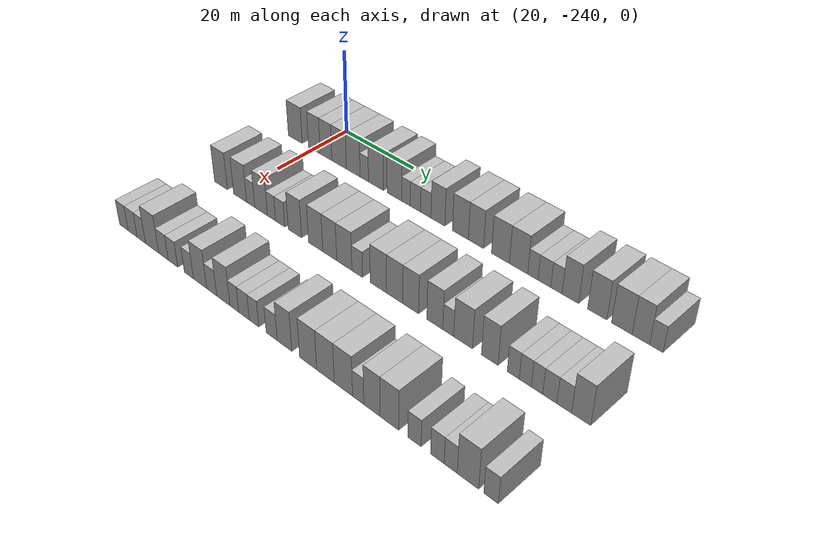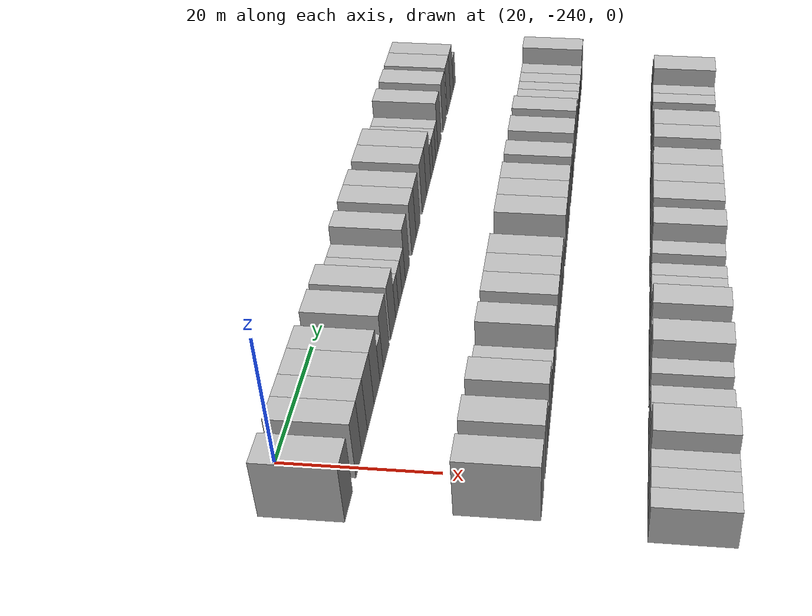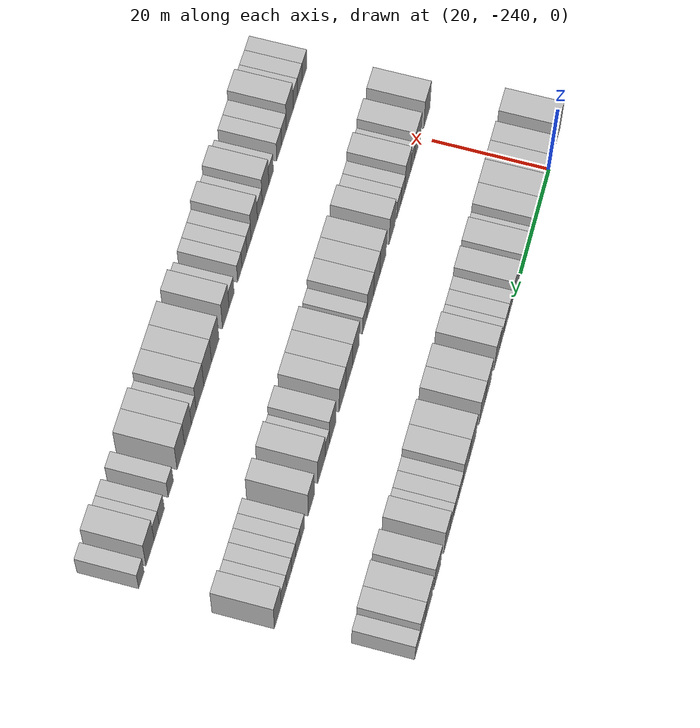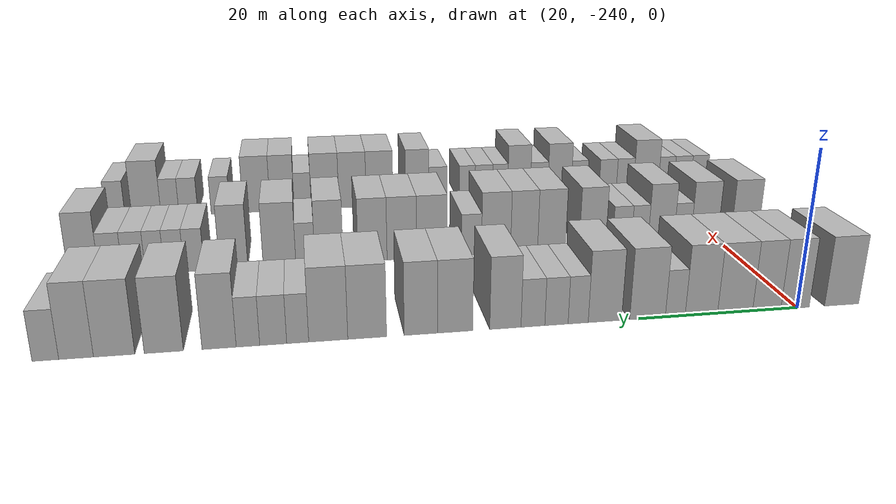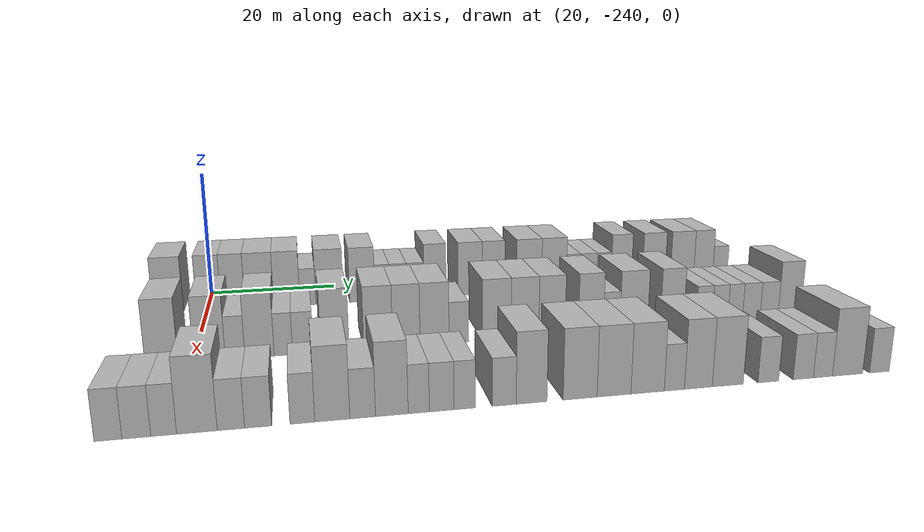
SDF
<sdf version="1.6">
 <world name="default">
  <model name="building_1">
   <static>1</static>
   <pose>25.0000 -245.7644 0 0.000000 0.000000 0.000000</pose>
   <link name="link">
    <pose>0 0 4.50 0 0 0</pose>
    <collision name="collision"><geometry><box><size>10.0000 4.4713 9.0000</size></box></geometry></collision>
    <visual name="visual">
     <cast_shadows>0</cast_shadows>
     <geometry><box><size>10.0000 4.4713 9.0000</size></box></geometry>
     <material>
      <script>
       <uri>model://HANNAS_wall/materials/scripts</uri>
       <uri>model://HANNAS_wall/materials/textures</uri>
       <name>vrc/HANNAS_wall</name>
      </script>
     </material>
    </visual>
   </link>
  </model>
  <model name="building_2">
   <static>1</static>
   <pose>25.0000 -239.6959 0 0.000000 0.000000 0.000000</pose>
   <link name="link">
    <pose>0 0 4.50 0 0 0</pose>
    <collision name="collision"><geometry><box><size>10.0000 3.6656 9.0000</size></box></geometry></collision>
    <visual name="visual">
     <cast_shadows>0</cast_shadows>
     <geometry><box><size>10.0000 3.6656 9.0000</size></box></geometry>
     <material>
      <script>
       <uri>model://HANNAS_wall/materials/scripts</uri>
       <uri>model://HANNAS_wall/materials/textures</uri>
       <name>vrc/HANNAS_wall</name>
      </script>
     </material>
    </visual>
   </link>
  </model>
  <model name="building_3">
   <static>1</static>
   <pose>25.0000 -236.0522 0 0.000000 0.000000 0.000000</pose>
   <link name="link">
    <pose>0 0 4.50 0 0 0</pose>
    <collision name="collision"><geometry><box><size>10.0000 3.6218 9.0000</size></box></geometry></collision>
    <visual name="visual">
     <cast_shadows>0</cast_shadows>
     <geometry><box><size>10.0000 3.6218 9.0000</size></box></geometry>
     <material>
      <script>
       <uri>model://HANNAS_wall/materials/scripts</uri>
       <uri>model://HANNAS_wall/materials/textures</uri>
       <name>vrc/HANNAS_wall</name>
      </script>
     </material>
    </visual>
   </link>
  </model>
  <model name="building_4">
   <static>1</static>
   <pose>25.0000 -232.0226 0 0.000000 0.000000 0.000000</pose>
   <link name="link">
    <pose>0 0 4.50 0 0 0</pose>
    <collision name="collision"><geometry><box><size>10.0000 4.4375 9.0000</size></box></geometry></collision>
    <visual name="visual">
     <cast_shadows>0</cast_shadows>
     <geometry><box><size>10.0000 4.4375 9.0000</size></box></geometry>
     <material>
      <script>
       <uri>model://HANNAS_wall/materials/scripts</uri>
       <uri>model://HANNAS_wall/materials/textures</uri>
       <name>vrc/HANNAS_wall</name>
      </script>
     </material>
    </visual>
   </link>
  </model>
  <model name="building_5">
   <static>1</static>
   <pose>25.0000 -227.7688 0 0.000000 0.000000 0.000000</pose>
   <link name="link">
    <pose>0 0 4.50 0 0 0</pose>
    <collision name="collision"><geometry><box><size>10.0000 4.0701 9.0000</size></box></geometry></collision>
    <visual name="visual">
     <cast_shadows>0</cast_shadows>
     <geometry><box><size>10.0000 4.0701 9.0000</size></box></geometry>
     <material>
      <script>
       <uri>model://HANNAS_wall/materials/scripts</uri>
       <uri>model://HANNAS_wall/materials/textures</uri>
       <name>vrc/HANNAS_wall</name>
      </script>
     </material>
    </visual>
   </link>
  </model>
  <model name="building_6">
   <static>1</static>
   <pose>25.0000 -224.5010 0 0.000000 0.000000 0.000000</pose>
   <link name="link">
    <pose>0 0 3.00 0 0 0</pose>
    <collision name="collision"><geometry><box><size>10.0000 2.4654 6.0000</size></box></geometry></collision>
    <visual name="visual">
     <cast_shadows>0</cast_shadows>
     <geometry><box><size>10.0000 2.4654 6.0000</size></box></geometry>
     <material>
      <script>
       <uri>model://HANNAS_wall/materials/scripts</uri>
       <uri>model://HANNAS_wall/materials/textures</uri>
       <name>vrc/HANNAS_wall</name>
      </script>
     </material>
    </visual>
   </link>
  </model>
  <model name="building_7">
   <static>1</static>
   <pose>25.0000 -221.0749 0 0.000000 0.000000 0.000000</pose>
   <link name="link">
    <pose>0 0 4.50 0 0 0</pose>
    <collision name="collision"><geometry><box><size>10.0000 4.3868 9.0000</size></box></geometry></collision>
    <visual name="visual">
     <cast_shadows>0</cast_shadows>
     <geometry><box><size>10.0000 4.3868 9.0000</size></box></geometry>
     <material>
      <script>
       <uri>model://HANNAS_wall/materials/scripts</uri>
       <uri>model://HANNAS_wall/materials/textures</uri>
       <name>vrc/HANNAS_wall</name>
      </script>
     </material>
    </visual>
   </link>
  </model>
  <model name="building_8">
   <static>1</static>
   <pose>25.0000 -215.8531 0 0.000000 0.000000 0.000000</pose>
   <link name="link">
    <pose>0 0 4.50 0 0 0</pose>
    <collision name="collision"><geometry><box><size>10.0000 4.0567 9.0000</size></box></geometry></collision>
    <visual name="visual">
     <cast_shadows>0</cast_shadows>
     <geometry><box><size>10.0000 4.0567 9.0000</size></box></geometry>
     <material>
      <script>
       <uri>model://HANNAS_wall/materials/scripts</uri>
       <uri>model://HANNAS_wall/materials/textures</uri>
       <name>vrc/HANNAS_wall</name>
      </script>
     </material>
    </visual>
   </link>
  </model>
  <model name="building_9">
   <static>1</static>
   <pose>25.0000 -212.6111 0 0.000000 0.000000 0.000000</pose>
   <link name="link">
    <pose>0 0 3.00 0 0 0</pose>
    <collision name="collision"><geometry><box><size>10.0000 2.4273 6.0000</size></box></geometry></collision>
    <visual name="visual">
     <cast_shadows>0</cast_shadows>
     <geometry><box><size>10.0000 2.4273 6.0000</size></box></geometry>
     <material>
      <script>
       <uri>model://HANNAS_wall/materials/scripts</uri>
       <uri>model://HANNAS_wall/materials/textures</uri>
       <name>vrc/HANNAS_wall</name>
      </script>
     </material>
    </visual>
   </link>
  </model>
  <model name="building_10">
   <static>1</static>
   <pose>25.0000 -210.0040 0 0.000000 0.000000 0.000000</pose>
   <link name="link">
    <pose>0 0 3.00 0 0 0</pose>
    <collision name="collision"><geometry><box><size>10.0000 2.7869 6.0000</size></box></geometry></collision>
    <visual name="visual">
     <cast_shadows>0</cast_shadows>
     <geometry><box><size>10.0000 2.7869 6.0000</size></box></geometry>
     <material>
      <script>
       <uri>model://HANNAS_wall/materials/scripts</uri>
       <uri>model://HANNAS_wall/materials/textures</uri>
       <name>vrc/HANNAS_wall</name>
      </script>
     </material>
    </visual>
   </link>
  </model>
  <model name="building_11">
   <static>1</static>
   <pose>25.0000 -207.1946 0 0.000000 0.000000 0.000000</pose>
   <link name="link">
    <pose>0 0 3.00 0 0 0</pose>
    <collision name="collision"><geometry><box><size>10.0000 2.8318 6.0000</size></box></geometry></collision>
    <visual name="visual">
     <cast_shadows>0</cast_shadows>
     <geometry><box><size>10.0000 2.8318 6.0000</size></box></geometry>
     <material>
      <script>
       <uri>model://HANNAS_wall/materials/scripts</uri>
       <uri>model://HANNAS_wall/materials/textures</uri>
       <name>vrc/HANNAS_wall</name>
      </script>
     </material>
    </visual>
   </link>
  </model>
  <model name="building_12">
   <static>1</static>
   <pose>25.0000 -203.9349 0 0.000000 0.000000 0.000000</pose>
   <link name="link">
    <pose>0 0 4.50 0 0 0</pose>
    <collision name="collision"><geometry><box><size>10.0000 3.6875 9.0000</size></box></geometry></collision>
    <visual name="visual">
     <cast_shadows>0</cast_shadows>
     <geometry><box><size>10.0000 3.6875 9.0000</size></box></geometry>
     <material>
      <script>
       <uri>model://HANNAS_wall/materials/scripts</uri>
       <uri>model://HANNAS_wall/materials/textures</uri>
       <name>vrc/HANNAS_wall</name>
      </script>
     </material>
    </visual>
   </link>
  </model>
  <model name="building_13">
   <static>1</static>
   <pose>25.0000 -198.0447 0 0.000000 0.000000 0.000000</pose>
   <link name="link">
    <pose>0 0 4.50 0 0 0</pose>
    <collision name="collision"><geometry><box><size>10.0000 4.0929 9.0000</size></box></geometry></collision>
    <visual name="visual">
     <cast_shadows>0</cast_shadows>
     <geometry><box><size>10.0000 4.0929 9.0000</size></box></geometry>
     <material>
      <script>
       <uri>model://HANNAS_wall/materials/scripts</uri>
       <uri>model://HANNAS_wall/materials/textures</uri>
       <name>vrc/HANNAS_wall</name>
      </script>
     </material>
    </visual>
   </link>
  </model>
  <model name="building_14">
   <static>1</static>
   <pose>25.0000 -194.0891 0 0.000000 0.000000 0.000000</pose>
   <link name="link">
    <pose>0 0 4.50 0 0 0</pose>
    <collision name="collision"><geometry><box><size>10.0000 3.8181 9.0000</size></box></geometry></collision>
    <visual name="visual">
     <cast_shadows>0</cast_shadows>
     <geometry><box><size>10.0000 3.8181 9.0000</size></box></geometry>
     <material>
      <script>
       <uri>model://HANNAS_wall/materials/scripts</uri>
       <uri>model://HANNAS_wall/materials/textures</uri>
       <name>vrc/HANNAS_wall</name>
      </script>
     </material>
    </visual>
   </link>
  </model>
  <model name="building_15">
   <static>1</static>
   <pose>25.0000 -187.9881 0 0.000000 0.000000 0.000000</pose>
   <link name="link">
    <pose>0 0 4.50 0 0 0</pose>
    <collision name="collision"><geometry><box><size>10.0000 4.3840 9.0000</size></box></geometry></collision>
    <visual name="visual">
     <cast_shadows>0</cast_shadows>
     <geometry><box><size>10.0000 4.3840 9.0000</size></box></geometry>
     <material>
      <script>
       <uri>model://HANNAS_wall/materials/scripts</uri>
       <uri>model://HANNAS_wall/materials/textures</uri>
       <name>vrc/HANNAS_wall</name>
      </script>
     </material>
    </visual>
   </link>
  </model>
  <model name="building_16">
   <static>1</static>
   <pose>25.0000 -183.6139 0 0.000000 0.000000 0.000000</pose>
   <link name="link">
    <pose>0 0 4.50 0 0 0</pose>
    <collision name="collision"><geometry><box><size>10.0000 4.3643 9.0000</size></box></geometry></collision>
    <visual name="visual">
     <cast_shadows>0</cast_shadows>
     <geometry><box><size>10.0000 4.3643 9.0000</size></box></geometry>
     <material>
      <script>
       <uri>model://HANNAS_wall/materials/scripts</uri>
       <uri>model://HANNAS_wall/materials/textures</uri>
       <name>vrc/HANNAS_wall</name>
      </script>
     </material>
    </visual>
   </link>
  </model>
  <model name="building_17">
   <static>1</static>
   <pose>25.0000 -180.2141 0 0.000000 0.000000 0.000000</pose>
   <link name="link">
    <pose>0 0 3.00 0 0 0</pose>
    <collision name="collision"><geometry><box><size>10.0000 2.4354 6.0000</size></box></geometry></collision>
    <visual name="visual">
     <cast_shadows>0</cast_shadows>
     <geometry><box><size>10.0000 2.4354 6.0000</size></box></geometry>
     <material>
      <script>
       <uri>model://HANNAS_wall/materials/scripts</uri>
       <uri>model://HANNAS_wall/materials/textures</uri>
       <name>vrc/HANNAS_wall</name>
      </script>
     </material>
    </visual>
   </link>
  </model>
  <model name="building_18">
   <static>1</static>
   <pose>25.0000 -177.5142 0 0.000000 0.000000 0.000000</pose>
   <link name="link">
    <pose>0 0 3.00 0 0 0</pose>
    <collision name="collision"><geometry><box><size>10.0000 2.9643 6.0000</size></box></geometry></collision>
    <visual name="visual">
     <cast_shadows>0</cast_shadows>
     <geometry><box><size>10.0000 2.9643 6.0000</size></box></geometry>
     <material>
      <script>
       <uri>model://HANNAS_wall/materials/scripts</uri>
       <uri>model://HANNAS_wall/materials/textures</uri>
       <name>vrc/HANNAS_wall</name>
      </script>
     </material>
    </visual>
   </link>
  </model>
  <model name="building_19">
   <static>1</static>
   <pose>25.0000 -174.7505 0 0.000000 0.000000 0.000000</pose>
   <link name="link">
    <pose>0 0 3.00 0 0 0</pose>
    <collision name="collision"><geometry><box><size>10.0000 2.5631 6.0000</size></box></geometry></collision>
    <visual name="visual">
     <cast_shadows>0</cast_shadows>
     <geometry><box><size>10.0000 2.5631 6.0000</size></box></geometry>
     <material>
      <script>
       <uri>model://HANNAS_wall/materials/scripts</uri>
       <uri>model://HANNAS_wall/materials/textures</uri>
       <name>vrc/HANNAS_wall</name>
      </script>
     </material>
    </visual>
   </link>
  </model>
  <model name="building_20">
   <static>1</static>
   <pose>25.0000 -171.6184 0 0.000000 0.000000 0.000000</pose>
   <link name="link">
    <pose>0 0 4.50 0 0 0</pose>
    <collision name="collision"><geometry><box><size>10.0000 3.7011 9.0000</size></box></geometry></collision>
    <visual name="visual">
     <cast_shadows>0</cast_shadows>
     <geometry><box><size>10.0000 3.7011 9.0000</size></box></geometry>
     <material>
      <script>
       <uri>model://HANNAS_wall/materials/scripts</uri>
       <uri>model://HANNAS_wall/materials/textures</uri>
       <name>vrc/HANNAS_wall</name>
      </script>
     </material>
    </visual>
   </link>
  </model>
  <model name="building_21">
   <static>1</static>
   <pose>25.0000 -165.6865 0 0.000000 0.000000 0.000000</pose>
   <link name="link">
    <pose>0 0 4.50 0 0 0</pose>
    <collision name="collision"><geometry><box><size>10.0000 4.1626 9.0000</size></box></geometry></collision>
    <visual name="visual">
     <cast_shadows>0</cast_shadows>
     <geometry><box><size>10.0000 4.1626 9.0000</size></box></geometry>
     <material>
      <script>
       <uri>model://HANNAS_wall/materials/scripts</uri>
       <uri>model://HANNAS_wall/materials/textures</uri>
       <name>vrc/HANNAS_wall</name>
      </script>
     </material>
    </visual>
   </link>
  </model>
  <model name="building_22">
   <static>1</static>
   <pose>25.0000 -160.4415 0 0.000000 0.000000 0.000000</pose>
   <link name="link">
    <pose>0 0 4.50 0 0 0</pose>
    <collision name="collision"><geometry><box><size>10.0000 4.3274 9.0000</size></box></geometry></collision>
    <visual name="visual">
     <cast_shadows>0</cast_shadows>
     <geometry><box><size>10.0000 4.3274 9.0000</size></box></geometry>
     <material>
      <script>
       <uri>model://HANNAS_wall/materials/scripts</uri>
       <uri>model://HANNAS_wall/materials/textures</uri>
       <name>vrc/HANNAS_wall</name>
      </script>
     </material>
    </visual>
   </link>
  </model>
  <model name="building_23">
   <static>1</static>
   <pose>25.0000 -156.4772 0 0.000000 0.000000 0.000000</pose>
   <link name="link">
    <pose>0 0 4.50 0 0 0</pose>
    <collision name="collision"><geometry><box><size>10.0000 3.6012 9.0000</size></box></geometry></collision>
    <visual name="visual">
     <cast_shadows>0</cast_shadows>
     <geometry><box><size>10.0000 3.6012 9.0000</size></box></geometry>
     <material>
      <script>
       <uri>model://HANNAS_wall/materials/scripts</uri>
       <uri>model://HANNAS_wall/materials/textures</uri>
       <name>vrc/HANNAS_wall</name>
      </script>
     </material>
    </visual>
   </link>
  </model>
  <model name="building_24">
   <static>1</static>
   <pose>25.0000 -153.3023 0 0.000000 0.000000 0.000000</pose>
   <link name="link">
    <pose>0 0 3.00 0 0 0</pose>
    <collision name="collision"><geometry><box><size>10.0000 2.7484 6.0000</size></box></geometry></collision>
    <visual name="visual">
     <cast_shadows>0</cast_shadows>
     <geometry><box><size>10.0000 2.7484 6.0000</size></box></geometry>
     <material>
      <script>
       <uri>model://HANNAS_wall/materials/scripts</uri>
       <uri>model://HANNAS_wall/materials/textures</uri>
       <name>vrc/HANNAS_wall</name>
      </script>
     </material>
    </visual>
   </link>
  </model>
  <model name="building_122">
   <static>1</static>
   <pose>47.0000 -243.9317 0 0.000000 0.000000 0.000000</pose>
   <link name="link">
    <pose>0 0 4.50 0 0 0</pose>
    <collision name="collision"><geometry><box><size>10.0000 4.1365 9.0000</size></box></geometry></collision>
    <visual name="visual">
     <cast_shadows>0</cast_shadows>
     <geometry><box><size>10.0000 4.1365 9.0000</size></box></geometry>
     <material>
      <script>
       <uri>model://HANNAS_wall/materials/scripts</uri>
       <uri>model://HANNAS_wall/materials/textures</uri>
       <name>vrc/HANNAS_wall</name>
      </script>
     </material>
    </visual>
   </link>
  </model>
  <model name="building_123">
   <static>1</static>
   <pose>47.0000 -237.8380 0 0.000000 0.000000 0.000000</pose>
   <link name="link">
    <pose>0 0 4.50 0 0 0</pose>
    <collision name="collision"><geometry><box><size>10.0000 4.0509 9.0000</size></box></geometry></collision>
    <visual name="visual">
     <cast_shadows>0</cast_shadows>
     <geometry><box><size>10.0000 4.0509 9.0000</size></box></geometry>
     <material>
      <script>
       <uri>model://HANNAS_wall/materials/scripts</uri>
       <uri>model://HANNAS_wall/materials/textures</uri>
       <name>vrc/HANNAS_wall</name>
      </script>
     </material>
    </visual>
   </link>
  </model>
  <model name="building_124">
   <static>1</static>
   <pose>47.0000 -234.5465 0 0.000000 0.000000 0.000000</pose>
   <link name="link">
    <pose>0 0 3.00 0 0 0</pose>
    <collision name="collision"><geometry><box><size>10.0000 2.5322 6.0000</size></box></geometry></collision>
    <visual name="visual">
     <cast_shadows>0</cast_shadows>
     <geometry><box><size>10.0000 2.5322 6.0000</size></box></geometry>
     <material>
      <script>
       <uri>model://HANNAS_wall/materials/scripts</uri>
       <uri>model://HANNAS_wall/materials/textures</uri>
       <name>vrc/HANNAS_wall</name>
      </script>
     </material>
    </visual>
   </link>
  </model>
  <model name="building_125">
   <static>1</static>
   <pose>47.0000 -231.3636 0 0.000000 0.000000 0.000000</pose>
   <link name="link">
    <pose>0 0 4.50 0 0 0</pose>
    <collision name="collision"><geometry><box><size>10.0000 3.8337 9.0000</size></box></geometry></collision>
    <visual name="visual">
     <cast_shadows>0</cast_shadows>
     <geometry><box><size>10.0000 3.8337 9.0000</size></box></geometry>
     <material>
      <script>
       <uri>model://HANNAS_wall/materials/scripts</uri>
       <uri>model://HANNAS_wall/materials/textures</uri>
       <name>vrc/HANNAS_wall</name>
      </script>
     </material>
    </visual>
   </link>
  </model>
  <model name="building_126">
   <static>1</static>
   <pose>47.0000 -228.2254 0 0.000000 0.000000 0.000000</pose>
   <link name="link">
    <pose>0 0 3.00 0 0 0</pose>
    <collision name="collision"><geometry><box><size>10.0000 2.4427 6.0000</size></box></geometry></collision>
    <visual name="visual">
     <cast_shadows>0</cast_shadows>
     <geometry><box><size>10.0000 2.4427 6.0000</size></box></geometry>
     <material>
      <script>
       <uri>model://HANNAS_wall/materials/scripts</uri>
       <uri>model://HANNAS_wall/materials/textures</uri>
       <name>vrc/HANNAS_wall</name>
      </script>
     </material>
    </visual>
   </link>
  </model>
  <model name="building_127">
   <static>1</static>
   <pose>47.0000 -225.6197 0 0.000000 0.000000 0.000000</pose>
   <link name="link">
    <pose>0 0 3.00 0 0 0</pose>
    <collision name="collision"><geometry><box><size>10.0000 2.7688 6.0000</size></box></geometry></collision>
    <visual name="visual">
     <cast_shadows>0</cast_shadows>
     <geometry><box><size>10.0000 2.7688 6.0000</size></box></geometry>
     <material>
      <script>
       <uri>model://HANNAS_wall/materials/scripts</uri>
       <uri>model://HANNAS_wall/materials/textures</uri>
       <name>vrc/HANNAS_wall</name>
      </script>
     </material>
    </visual>
   </link>
  </model>
  <model name="building_128">
   <static>1</static>
   <pose>47.0000 -221.3165 0 0.000000 0.000000 0.000000</pose>
   <link name="link">
    <pose>0 0 4.50 0 0 0</pose>
    <collision name="collision"><geometry><box><size>10.0000 3.8375 9.0000</size></box></geometry></collision>
    <visual name="visual">
     <cast_shadows>0</cast_shadows>
     <geometry><box><size>10.0000 3.8375 9.0000</size></box></geometry>
     <material>
      <script>
       <uri>model://HANNAS_wall/materials/scripts</uri>
       <uri>model://HANNAS_wall/materials/textures</uri>
       <name>vrc/HANNAS_wall</name>
      </script>
     </material>
    </visual>
   </link>
  </model>
  <model name="building_129">
   <static>1</static>
   <pose>47.0000 -215.4066 0 0.000000 0.000000 0.000000</pose>
   <link name="link">
    <pose>0 0 4.50 0 0 0</pose>
    <collision name="collision"><geometry><box><size>10.0000 3.9824 9.0000</size></box></geometry></collision>
    <visual name="visual">
     <cast_shadows>0</cast_shadows>
     <geometry><box><size>10.0000 3.9824 9.0000</size></box></geometry>
     <material>
      <script>
       <uri>model://HANNAS_wall/materials/scripts</uri>
       <uri>model://HANNAS_wall/materials/textures</uri>
       <name>vrc/HANNAS_wall</name>
      </script>
     </material>
    </visual>
   </link>
  </model>
  <model name="building_130">
   <static>1</static>
   <pose>47.0000 -211.4935 0 0.000000 0.000000 0.000000</pose>
   <link name="link">
    <pose>0 0 4.50 0 0 0</pose>
    <collision name="collision"><geometry><box><size>10.0000 3.8437 9.0000</size></box></geometry></collision>
    <visual name="visual">
     <cast_shadows>0</cast_shadows>
     <geometry><box><size>10.0000 3.8437 9.0000</size></box></geometry>
     <material>
      <script>
       <uri>model://HANNAS_wall/materials/scripts</uri>
       <uri>model://HANNAS_wall/materials/textures</uri>
       <name>vrc/HANNAS_wall</name>
      </script>
     </material>
    </visual>
   </link>
  </model>
  <model name="building_131">
   <static>1</static>
   <pose>47.0000 -207.5198 0 0.000000 0.000000 0.000000</pose>
   <link name="link">
    <pose>0 0 4.50 0 0 0</pose>
    <collision name="collision"><geometry><box><size>10.0000 4.1036 9.0000</size></box></geometry></collision>
    <visual name="visual">
     <cast_shadows>0</cast_shadows>
     <geometry><box><size>10.0000 4.1036 9.0000</size></box></geometry>
     <material>
      <script>
       <uri>model://HANNAS_wall/materials/scripts</uri>
       <uri>model://HANNAS_wall/materials/textures</uri>
       <name>vrc/HANNAS_wall</name>
      </script>
     </material>
    </visual>
   </link>
  </model>
  <model name="building_132">
   <static>1</static>
   <pose>47.0000 -204.0639 0 0.000000 0.000000 0.000000</pose>
   <link name="link">
    <pose>0 0 3.00 0 0 0</pose>
    <collision name="collision"><geometry><box><size>10.0000 2.8082 6.0000</size></box></geometry></collision>
    <visual name="visual">
     <cast_shadows>0</cast_shadows>
     <geometry><box><size>10.0000 2.8082 6.0000</size></box></geometry>
     <material>
      <script>
       <uri>model://HANNAS_wall/materials/scripts</uri>
       <uri>model://HANNAS_wall/materials/textures</uri>
       <name>vrc/HANNAS_wall</name>
      </script>
     </material>
    </visual>
   </link>
  </model>
  <model name="building_133">
   <static>1</static>
   <pose>47.0000 -198.5644 0 0.000000 0.000000 0.000000</pose>
   <link name="link">
    <pose>0 0 4.50 0 0 0</pose>
    <collision name="collision"><geometry><box><size>10.0000 4.1907 9.0000</size></box></geometry></collision>
    <visual name="visual">
     <cast_shadows>0</cast_shadows>
     <geometry><box><size>10.0000 4.1907 9.0000</size></box></geometry>
     <material>
      <script>
       <uri>model://HANNAS_wall/materials/scripts</uri>
       <uri>model://HANNAS_wall/materials/textures</uri>
       <name>vrc/HANNAS_wall</name>
      </script>
     </material>
    </visual>
   </link>
  </model>
  <model name="building_134">
   <static>1</static>
   <pose>47.0000 -194.4369 0 0.000000 0.000000 0.000000</pose>
   <link name="link">
    <pose>0 0 4.50 0 0 0</pose>
    <collision name="collision"><geometry><box><size>10.0000 4.0643 9.0000</size></box></geometry></collision>
    <visual name="visual">
     <cast_shadows>0</cast_shadows>
     <geometry><box><size>10.0000 4.0643 9.0000</size></box></geometry>
     <material>
      <script>
       <uri>model://HANNAS_wall/materials/scripts</uri>
       <uri>model://HANNAS_wall/materials/textures</uri>
       <name>vrc/HANNAS_wall</name>
      </script>
     </material>
    </visual>
   </link>
  </model>
  <model name="building_135">
   <static>1</static>
   <pose>47.0000 -190.4378 0 0.000000 0.000000 0.000000</pose>
   <link name="link">
    <pose>0 0 4.50 0 0 0</pose>
    <collision name="collision"><geometry><box><size>10.0000 3.9339 9.0000</size></box></geometry></collision>
    <visual name="visual">
     <cast_shadows>0</cast_shadows>
     <geometry><box><size>10.0000 3.9339 9.0000</size></box></geometry>
     <material>
      <script>
       <uri>model://HANNAS_wall/materials/scripts</uri>
       <uri>model://HANNAS_wall/materials/textures</uri>
       <name>vrc/HANNAS_wall</name>
      </script>
     </material>
    </visual>
   </link>
  </model>
  <model name="building_136">
   <static>1</static>
   <pose>47.0000 -184.5663 0 0.000000 0.000000 0.000000</pose>
   <link name="link">
    <pose>0 0 4.50 0 0 0</pose>
    <collision name="collision"><geometry><box><size>10.0000 3.8093 9.0000</size></box></geometry></collision>
    <visual name="visual">
     <cast_shadows>0</cast_shadows>
     <geometry><box><size>10.0000 3.8093 9.0000</size></box></geometry>
     <material>
      <script>
       <uri>model://HANNAS_wall/materials/scripts</uri>
       <uri>model://HANNAS_wall/materials/textures</uri>
       <name>vrc/HANNAS_wall</name>
      </script>
     </material>
    </visual>
   </link>
  </model>
  <model name="building_137">
   <static>1</static>
   <pose>47.0000 -181.3978 0 0.000000 0.000000 0.000000</pose>
   <link name="link">
    <pose>0 0 3.00 0 0 0</pose>
    <collision name="collision"><geometry><box><size>10.0000 2.5277 6.0000</size></box></geometry></collision>
    <visual name="visual">
     <cast_shadows>0</cast_shadows>
     <geometry><box><size>10.0000 2.5277 6.0000</size></box></geometry>
     <material>
      <script>
       <uri>model://HANNAS_wall/materials/scripts</uri>
       <uri>model://HANNAS_wall/materials/textures</uri>
       <name>vrc/HANNAS_wall</name>
      </script>
     </material>
    </visual>
   </link>
  </model>
  <model name="building_138">
   <static>1</static>
   <pose>47.0000 -177.9758 0 0.000000 0.000000 0.000000</pose>
   <link name="link">
    <pose>0 0 4.50 0 0 0</pose>
    <collision name="collision"><geometry><box><size>10.0000 4.3162 9.0000</size></box></geometry></collision>
    <visual name="visual">
     <cast_shadows>0</cast_shadows>
     <geometry><box><size>10.0000 4.3162 9.0000</size></box></geometry>
     <material>
      <script>
       <uri>model://HANNAS_wall/materials/scripts</uri>
       <uri>model://HANNAS_wall/materials/textures</uri>
       <name>vrc/HANNAS_wall</name>
      </script>
     </material>
    </visual>
   </link>
  </model>
  <model name="building_139">
   <static>1</static>
   <pose>47.0000 -171.9730 0 0.000000 0.000000 0.000000</pose>
   <link name="link">
    <pose>0 0 4.50 0 0 0</pose>
    <collision name="collision"><geometry><box><size>10.0000 3.6894 9.0000</size></box></geometry></collision>
    <visual name="visual">
     <cast_shadows>0</cast_shadows>
     <geometry><box><size>10.0000 3.6894 9.0000</size></box></geometry>
     <material>
      <script>
       <uri>model://HANNAS_wall/materials/scripts</uri>
       <uri>model://HANNAS_wall/materials/textures</uri>
       <name>vrc/HANNAS_wall</name>
      </script>
     </material>
    </visual>
   </link>
  </model>
  <model name="building_140">
   <static>1</static>
   <pose>47.0000 -166.8330 0 0.000000 0.000000 0.000000</pose>
   <link name="link">
    <pose>0 0 3.00 0 0 0</pose>
    <collision name="collision"><geometry><box><size>10.0000 2.5908 6.0000</size></box></geometry></collision>
    <visual name="visual">
     <cast_shadows>0</cast_shadows>
     <geometry><box><size>10.0000 2.5908 6.0000</size></box></geometry>
     <material>
      <script>
       <uri>model://HANNAS_wall/materials/scripts</uri>
       <uri>model://HANNAS_wall/materials/textures</uri>
       <name>vrc/HANNAS_wall</name>
      </script>
     </material>
    </visual>
   </link>
  </model>
  <model name="building_141">
   <static>1</static>
   <pose>47.0000 -164.2769 0 0.000000 0.000000 0.000000</pose>
   <link name="link">
    <pose>0 0 3.00 0 0 0</pose>
    <collision name="collision"><geometry><box><size>10.0000 2.5214 6.0000</size></box></geometry></collision>
    <visual name="visual">
     <cast_shadows>0</cast_shadows>
     <geometry><box><size>10.0000 2.5214 6.0000</size></box></geometry>
     <material>
      <script>
       <uri>model://HANNAS_wall/materials/scripts</uri>
       <uri>model://HANNAS_wall/materials/textures</uri>
       <name>vrc/HANNAS_wall</name>
      </script>
     </material>
    </visual>
   </link>
  </model>
  <model name="building_142">
   <static>1</static>
   <pose>47.0000 -161.8150 0 0.000000 0.000000 0.000000</pose>
   <link name="link">
    <pose>0 0 3.00 0 0 0</pose>
    <collision name="collision"><geometry><box><size>10.0000 2.4025 6.0000</size></box></geometry></collision>
    <visual name="visual">
     <cast_shadows>0</cast_shadows>
     <geometry><box><size>10.0000 2.4025 6.0000</size></box></geometry>
     <material>
      <script>
       <uri>model://HANNAS_wall/materials/scripts</uri>
       <uri>model://HANNAS_wall/materials/textures</uri>
       <name>vrc/HANNAS_wall</name>
      </script>
     </material>
    </visual>
   </link>
  </model>
  <model name="building_143">
   <static>1</static>
   <pose>47.0000 -159.1709 0 0.000000 0.000000 0.000000</pose>
   <link name="link">
    <pose>0 0 3.00 0 0 0</pose>
    <collision name="collision"><geometry><box><size>10.0000 2.8856 6.0000</size></box></geometry></collision>
    <visual name="visual">
     <cast_shadows>0</cast_shadows>
     <geometry><box><size>10.0000 2.8856 6.0000</size></box></geometry>
     <material>
      <script>
       <uri>model://HANNAS_wall/materials/scripts</uri>
       <uri>model://HANNAS_wall/materials/textures</uri>
       <name>vrc/HANNAS_wall</name>
      </script>
     </material>
    </visual>
   </link>
  </model>
  <model name="building_144">
   <static>1</static>
   <pose>47.0000 -156.2358 0 0.000000 0.000000 0.000000</pose>
   <link name="link">
    <pose>0 0 3.00 0 0 0</pose>
    <collision name="collision"><geometry><box><size>10.0000 2.9845 6.0000</size></box></geometry></collision>
    <visual name="visual">
     <cast_shadows>0</cast_shadows>
     <geometry><box><size>10.0000 2.9845 6.0000</size></box></geometry>
     <material>
      <script>
       <uri>model://HANNAS_wall/materials/scripts</uri>
       <uri>model://HANNAS_wall/materials/textures</uri>
       <name>vrc/HANNAS_wall</name>
      </script>
     </material>
    </visual>
   </link>
  </model>
  <model name="building_145">
   <static>1</static>
   <pose>47.0000 -152.8475 0 0.000000 0.000000 0.000000</pose>
   <link name="link">
    <pose>0 0 4.50 0 0 0</pose>
    <collision name="collision"><geometry><box><size>10.0000 3.7920 9.0000</size></box></geometry></collision>
    <visual name="visual">
     <cast_shadows>0</cast_shadows>
     <geometry><box><size>10.0000 3.7920 9.0000</size></box></geometry>
     <material>
      <script>
       <uri>model://HANNAS_wall/materials/scripts</uri>
       <uri>model://HANNAS_wall/materials/textures</uri>
       <name>vrc/HANNAS_wall</name>
      </script>
     </material>
    </visual>
   </link>
  </model>
  <model name="building_248">
   <static>1</static>
   <pose>69.0000 -246.5844 0 0.000000 0.000000 0.000000</pose>
   <link name="link">
    <pose>0 0 3.00 0 0 0</pose>
    <collision name="collision"><geometry><box><size>10.0000 2.8311 6.0000</size></box></geometry></collision>
    <visual name="visual">
     <cast_shadows>0</cast_shadows>
     <geometry><box><size>10.0000 2.8311 6.0000</size></box></geometry>
     <material>
      <script>
       <uri>model://HANNAS_wall/materials/scripts</uri>
       <uri>model://HANNAS_wall/materials/textures</uri>
       <name>vrc/HANNAS_wall</name>
      </script>
     </material>
    </visual>
   </link>
  </model>
  <model name="building_249">
   <static>1</static>
   <pose>69.0000 -243.6902 0 0.000000 0.000000 0.000000</pose>
   <link name="link">
    <pose>0 0 3.00 0 0 0</pose>
    <collision name="collision"><geometry><box><size>10.0000 2.9574 6.0000</size></box></geometry></collision>
    <visual name="visual">
     <cast_shadows>0</cast_shadows>
     <geometry><box><size>10.0000 2.9574 6.0000</size></box></geometry>
     <material>
      <script>
       <uri>model://HANNAS_wall/materials/scripts</uri>
       <uri>model://HANNAS_wall/materials/textures</uri>
       <name>vrc/HANNAS_wall</name>
      </script>
     </material>
    </visual>
   </link>
  </model>
  <model name="building_250">
   <static>1</static>
   <pose>69.0000 -240.8713 0 0.000000 0.000000 0.000000</pose>
   <link name="link">
    <pose>0 0 3.00 0 0 0</pose>
    <collision name="collision"><geometry><box><size>10.0000 2.6803 6.0000</size></box></geometry></collision>
    <visual name="visual">
     <cast_shadows>0</cast_shadows>
     <geometry><box><size>10.0000 2.6803 6.0000</size></box></geometry>
     <material>
      <script>
       <uri>model://HANNAS_wall/materials/scripts</uri>
       <uri>model://HANNAS_wall/materials/textures</uri>
       <name>vrc/HANNAS_wall</name>
      </script>
     </material>
    </visual>
   </link>
  </model>
  <model name="building_251">
   <static>1</static>
   <pose>69.0000 -237.3969 0 0.000000 0.000000 0.000000</pose>
   <link name="link">
    <pose>0 0 4.50 0 0 0</pose>
    <collision name="collision"><geometry><box><size>10.0000 4.2685 9.0000</size></box></geometry></collision>
    <visual name="visual">
     <cast_shadows>0</cast_shadows>
     <geometry><box><size>10.0000 4.2685 9.0000</size></box></geometry>
     <material>
      <script>
       <uri>model://HANNAS_wall/materials/scripts</uri>
       <uri>model://HANNAS_wall/materials/textures</uri>
       <name>vrc/HANNAS_wall</name>
      </script>
     </material>
    </visual>
   </link>
  </model>
  <model name="building_252">
   <static>1</static>
   <pose>69.0000 -233.7995 0 0.000000 0.000000 0.000000</pose>
   <link name="link">
    <pose>0 0 3.00 0 0 0</pose>
    <collision name="collision"><geometry><box><size>10.0000 2.9263 6.0000</size></box></geometry></collision>
    <visual name="visual">
     <cast_shadows>0</cast_shadows>
     <geometry><box><size>10.0000 2.9263 6.0000</size></box></geometry>
     <material>
      <script>
       <uri>model://HANNAS_wall/materials/scripts</uri>
       <uri>model://HANNAS_wall/materials/textures</uri>
       <name>vrc/HANNAS_wall</name>
      </script>
     </material>
    </visual>
   </link>
  </model>
  <model name="building_253">
   <static>1</static>
   <pose>69.0000 -230.8693 0 0.000000 0.000000 0.000000</pose>
   <link name="link">
    <pose>0 0 3.00 0 0 0</pose>
    <collision name="collision"><geometry><box><size>10.0000 2.9342 6.0000</size></box></geometry></collision>
    <visual name="visual">
     <cast_shadows>0</cast_shadows>
     <geometry><box><size>10.0000 2.9342 6.0000</size></box></geometry>
     <material>
      <script>
       <uri>model://HANNAS_wall/materials/scripts</uri>
       <uri>model://HANNAS_wall/materials/textures</uri>
       <name>vrc/HANNAS_wall</name>
      </script>
     </material>
    </visual>
   </link>
  </model>
  <model name="building_254">
   <static>1</static>
   <pose>69.0000 -226.0357 0 0.000000 0.000000 0.000000</pose>
   <link name="link">
    <pose>0 0 3.00 0 0 0</pose>
    <collision name="collision"><geometry><box><size>10.0000 2.7329 6.0000</size></box></geometry></collision>
    <visual name="visual">
     <cast_shadows>0</cast_shadows>
     <geometry><box><size>10.0000 2.7329 6.0000</size></box></geometry>
     <material>
      <script>
       <uri>model://HANNAS_wall/materials/scripts</uri>
       <uri>model://HANNAS_wall/materials/textures</uri>
       <name>vrc/HANNAS_wall</name>
      </script>
     </material>
    </visual>
   </link>
  </model>
  <model name="building_255">
   <static>1</static>
   <pose>69.0000 -222.7139 0 0.000000 0.000000 0.000000</pose>
   <link name="link">
    <pose>0 0 4.50 0 0 0</pose>
    <collision name="collision"><geometry><box><size>10.0000 3.9106 9.0000</size></box></geometry></collision>
    <visual name="visual">
     <cast_shadows>0</cast_shadows>
     <geometry><box><size>10.0000 3.9106 9.0000</size></box></geometry>
     <material>
      <script>
       <uri>model://HANNAS_wall/materials/scripts</uri>
       <uri>model://HANNAS_wall/materials/textures</uri>
       <name>vrc/HANNAS_wall</name>
      </script>
     </material>
    </visual>
   </link>
  </model>
  <model name="building_256">
   <static>1</static>
   <pose>69.0000 -219.3055 0 0.000000 0.000000 0.000000</pose>
   <link name="link">
    <pose>0 0 3.00 0 0 0</pose>
    <collision name="collision"><geometry><box><size>10.0000 2.9062 6.0000</size></box></geometry></collision>
    <visual name="visual">
     <cast_shadows>0</cast_shadows>
     <geometry><box><size>10.0000 2.9062 6.0000</size></box></geometry>
     <material>
      <script>
       <uri>model://HANNAS_wall/materials/scripts</uri>
       <uri>model://HANNAS_wall/materials/textures</uri>
       <name>vrc/HANNAS_wall</name>
      </script>
     </material>
    </visual>
   </link>
  </model>
  <model name="building_257">
   <static>1</static>
   <pose>69.0000 -215.9753 0 0.000000 0.000000 0.000000</pose>
   <link name="link">
    <pose>0 0 4.50 0 0 0</pose>
    <collision name="collision"><geometry><box><size>10.0000 3.7543 9.0000</size></box></geometry></collision>
    <visual name="visual">
     <cast_shadows>0</cast_shadows>
     <geometry><box><size>10.0000 3.7543 9.0000</size></box></geometry>
     <material>
      <script>
       <uri>model://HANNAS_wall/materials/scripts</uri>
       <uri>model://HANNAS_wall/materials/textures</uri>
       <name>vrc/HANNAS_wall</name>
      </script>
     </material>
    </visual>
   </link>
  </model>
  <model name="building_258">
   <static>1</static>
   <pose>69.0000 -212.8688 0 0.000000 0.000000 0.000000</pose>
   <link name="link">
    <pose>0 0 3.00 0 0 0</pose>
    <collision name="collision"><geometry><box><size>10.0000 2.4586 6.0000</size></box></geometry></collision>
    <visual name="visual">
     <cast_shadows>0</cast_shadows>
     <geometry><box><size>10.0000 2.4586 6.0000</size></box></geometry>
     <material>
      <script>
       <uri>model://HANNAS_wall/materials/scripts</uri>
       <uri>model://HANNAS_wall/materials/textures</uri>
       <name>vrc/HANNAS_wall</name>
      </script>
     </material>
    </visual>
   </link>
  </model>
  <model name="building_259">
   <static>1</static>
   <pose>69.0000 -210.1925 0 0.000000 0.000000 0.000000</pose>
   <link name="link">
    <pose>0 0 3.00 0 0 0</pose>
    <collision name="collision"><geometry><box><size>10.0000 2.8940 6.0000</size></box></geometry></collision>
    <visual name="visual">
     <cast_shadows>0</cast_shadows>
     <geometry><box><size>10.0000 2.8940 6.0000</size></box></geometry>
     <material>
      <script>
       <uri>model://HANNAS_wall/materials/scripts</uri>
       <uri>model://HANNAS_wall/materials/textures</uri>
       <name>vrc/HANNAS_wall</name>
      </script>
     </material>
    </visual>
   </link>
  </model>
  <model name="building_260">
   <static>1</static>
   <pose>69.0000 -207.4702 0 0.000000 0.000000 0.000000</pose>
   <link name="link">
    <pose>0 0 3.00 0 0 0</pose>
    <collision name="collision"><geometry><box><size>10.0000 2.5506 6.0000</size></box></geometry></collision>
    <visual name="visual">
     <cast_shadows>0</cast_shadows>
     <geometry><box><size>10.0000 2.5506 6.0000</size></box></geometry>
     <material>
      <script>
       <uri>model://HANNAS_wall/materials/scripts</uri>
       <uri>model://HANNAS_wall/materials/textures</uri>
       <name>vrc/HANNAS_wall</name>
      </script>
     </material>
    </visual>
   </link>
  </model>
  <model name="building_261">
   <static>1</static>
   <pose>69.0000 -202.7403 0 0.000000 0.000000 0.000000</pose>
   <link name="link">
    <pose>0 0 3.00 0 0 0</pose>
    <collision name="collision"><geometry><box><size>10.0000 2.9093 6.0000</size></box></geometry></collision>
    <visual name="visual">
     <cast_shadows>0</cast_shadows>
     <geometry><box><size>10.0000 2.9093 6.0000</size></box></geometry>
     <material>
      <script>
       <uri>model://HANNAS_wall/materials/scripts</uri>
       <uri>model://HANNAS_wall/materials/textures</uri>
       <name>vrc/HANNAS_wall</name>
      </script>
     </material>
    </visual>
   </link>
  </model>
  <model name="building_262">
   <static>1</static>
   <pose>69.0000 -199.4059 0 0.000000 0.000000 0.000000</pose>
   <link name="link">
    <pose>0 0 4.50 0 0 0</pose>
    <collision name="collision"><geometry><box><size>10.0000 3.7597 9.0000</size></box></geometry></collision>
    <visual name="visual">
     <cast_shadows>0</cast_shadows>
     <geometry><box><size>10.0000 3.7597 9.0000</size></box></geometry>
     <material>
      <script>
       <uri>model://HANNAS_wall/materials/scripts</uri>
       <uri>model://HANNAS_wall/materials/textures</uri>
       <name>vrc/HANNAS_wall</name>
      </script>
     </material>
    </visual>
   </link>
  </model>
  <model name="building_263">
   <static>1</static>
   <pose>69.0000 -193.3988 0 0.000000 0.000000 0.000000</pose>
   <link name="link">
    <pose>0 0 4.50 0 0 0</pose>
    <collision name="collision"><geometry><box><size>10.0000 4.2545 9.0000</size></box></geometry></collision>
    <visual name="visual">
     <cast_shadows>0</cast_shadows>
     <geometry><box><size>10.0000 4.2545 9.0000</size></box></geometry>
     <material>
      <script>
       <uri>model://HANNAS_wall/materials/scripts</uri>
       <uri>model://HANNAS_wall/materials/textures</uri>
       <name>vrc/HANNAS_wall</name>
      </script>
     </material>
    </visual>
   </link>
  </model>
  <model name="building_264">
   <static>1</static>
   <pose>69.0000 -189.1172 0 0.000000 0.000000 0.000000</pose>
   <link name="link">
    <pose>0 0 4.50 0 0 0</pose>
    <collision name="collision"><geometry><box><size>10.0000 4.3087 9.0000</size></box></geometry></collision>
    <visual name="visual">
     <cast_shadows>0</cast_shadows>
     <geometry><box><size>10.0000 4.3087 9.0000</size></box></geometry>
     <material>
      <script>
       <uri>model://HANNAS_wall/materials/scripts</uri>
       <uri>model://HANNAS_wall/materials/textures</uri>
       <name>vrc/HANNAS_wall</name>
      </script>
     </material>
    </visual>
   </link>
  </model>
  <model name="building_265">
   <static>1</static>
   <pose>69.0000 -184.8028 0 0.000000 0.000000 0.000000</pose>
   <link name="link">
    <pose>0 0 4.50 0 0 0</pose>
    <collision name="collision"><geometry><box><size>10.0000 4.3203 9.0000</size></box></geometry></collision>
    <visual name="visual">
     <cast_shadows>0</cast_shadows>
     <geometry><box><size>10.0000 4.3203 9.0000</size></box></geometry>
     <material>
      <script>
       <uri>model://HANNAS_wall/materials/scripts</uri>
       <uri>model://HANNAS_wall/materials/textures</uri>
       <name>vrc/HANNAS_wall</name>
      </script>
     </material>
    </visual>
   </link>
  </model>
  <model name="building_266">
   <static>1</static>
   <pose>69.0000 -181.3273 0 0.000000 0.000000 0.000000</pose>
   <link name="link">
    <pose>0 0 3.00 0 0 0</pose>
    <collision name="collision"><geometry><box><size>10.0000 2.6306 6.0000</size></box></geometry></collision>
    <visual name="visual">
     <cast_shadows>0</cast_shadows>
     <geometry><box><size>10.0000 2.6306 6.0000</size></box></geometry>
     <material>
      <script>
       <uri>model://HANNAS_wall/materials/scripts</uri>
       <uri>model://HANNAS_wall/materials/textures</uri>
       <name>vrc/HANNAS_wall</name>
      </script>
     </material>
    </visual>
   </link>
  </model>
  <model name="building_267">
   <static>1</static>
   <pose>69.0000 -178.1607 0 0.000000 0.000000 0.000000</pose>
   <link name="link">
    <pose>0 0 4.50 0 0 0</pose>
    <collision name="collision"><geometry><box><size>10.0000 3.7028 9.0000</size></box></geometry></collision>
    <visual name="visual">
     <cast_shadows>0</cast_shadows>
     <geometry><box><size>10.0000 3.7028 9.0000</size></box></geometry>
     <material>
      <script>
       <uri>model://HANNAS_wall/materials/scripts</uri>
       <uri>model://HANNAS_wall/materials/textures</uri>
       <name>vrc/HANNAS_wall</name>
      </script>
     </material>
    </visual>
   </link>
  </model>
  <model name="building_268">
   <static>1</static>
   <pose>69.0000 -174.2265 0 0.000000 0.000000 0.000000</pose>
   <link name="link">
    <pose>0 0 4.50 0 0 0</pose>
    <collision name="collision"><geometry><box><size>10.0000 4.1656 9.0000</size></box></geometry></collision>
    <visual name="visual">
     <cast_shadows>0</cast_shadows>
     <geometry><box><size>10.0000 4.1656 9.0000</size></box></geometry>
     <material>
      <script>
       <uri>model://HANNAS_wall/materials/scripts</uri>
       <uri>model://HANNAS_wall/materials/textures</uri>
       <name>vrc/HANNAS_wall</name>
      </script>
     </material>
    </visual>
   </link>
  </model>
  <model name="building_269">
   <static>1</static>
   <pose>69.0000 -168.7199 0 0.000000 0.000000 0.000000</pose>
   <link name="link">
    <pose>0 0 3.00 0 0 0</pose>
    <collision name="collision"><geometry><box><size>10.0000 2.8476 6.0000</size></box></geometry></collision>
    <visual name="visual">
     <cast_shadows>0</cast_shadows>
     <geometry><box><size>10.0000 2.8476 6.0000</size></box></geometry>
     <material>
      <script>
       <uri>model://HANNAS_wall/materials/scripts</uri>
       <uri>model://HANNAS_wall/materials/textures</uri>
       <name>vrc/HANNAS_wall</name>
      </script>
     </material>
    </visual>
   </link>
  </model>
  <model name="building_270">
   <static>1</static>
   <pose>69.0000 -163.8837 0 0.000000 0.000000 0.000000</pose>
   <link name="link">
    <pose>0 0 3.00 0 0 0</pose>
    <collision name="collision"><geometry><box><size>10.0000 2.8248 6.0000</size></box></geometry></collision>
    <visual name="visual">
     <cast_shadows>0</cast_shadows>
     <geometry><box><size>10.0000 2.8248 6.0000</size></box></geometry>
     <material>
      <script>
       <uri>model://HANNAS_wall/materials/scripts</uri>
       <uri>model://HANNAS_wall/materials/textures</uri>
       <name>vrc/HANNAS_wall</name>
      </script>
     </material>
    </visual>
   </link>
  </model>
  <model name="building_271">
   <static>1</static>
   <pose>69.0000 -161.1267 0 0.000000 0.000000 0.000000</pose>
   <link name="link">
    <pose>0 0 3.00 0 0 0</pose>
    <collision name="collision"><geometry><box><size>10.0000 2.6891 6.0000</size></box></geometry></collision>
    <visual name="visual">
     <cast_shadows>0</cast_shadows>
     <geometry><box><size>10.0000 2.6891 6.0000</size></box></geometry>
     <material>
      <script>
       <uri>model://HANNAS_wall/materials/scripts</uri>
       <uri>model://HANNAS_wall/materials/textures</uri>
       <name>vrc/HANNAS_wall</name>
      </script>
     </material>
    </visual>
   </link>
  </model>
  <model name="building_272">
   <static>1</static>
   <pose>69.0000 -157.6274 0 0.000000 0.000000 0.000000</pose>
   <link name="link">
    <pose>0 0 4.50 0 0 0</pose>
    <collision name="collision"><geometry><box><size>10.0000 4.3095 9.0000</size></box></geometry></collision>
    <visual name="visual">
     <cast_shadows>0</cast_shadows>
     <geometry><box><size>10.0000 4.3095 9.0000</size></box></geometry>
     <material>
      <script>
       <uri>model://HANNAS_wall/materials/scripts</uri>
       <uri>model://HANNAS_wall/materials/textures</uri>
       <name>vrc/HANNAS_wall</name>
      </script>
     </material>
    </visual>
   </link>
  </model>
  <model name="building_273">
   <static>1</static>
   <pose>69.0000 -153.0485 0 0.000000 0.000000 0.000000</pose>
   <link name="link">
    <pose>0 0 3.00 0 0 0</pose>
    <collision name="collision"><geometry><box><size>10.0000 2.8483 6.0000</size></box></geometry></collision>
    <visual name="visual">
     <cast_shadows>0</cast_shadows>
     <geometry><box><size>10.0000 2.8483 6.0000</size></box></geometry>
     <material>
      <script>
       <uri>model://HANNAS_wall/materials/scripts</uri>
       <uri>model://HANNAS_wall/materials/textures</uri>
       <name>vrc/HANNAS_wall</name>
      </script>
     </material>
    </visual>
   </link>
  </model>
 </world>
</sdf>
